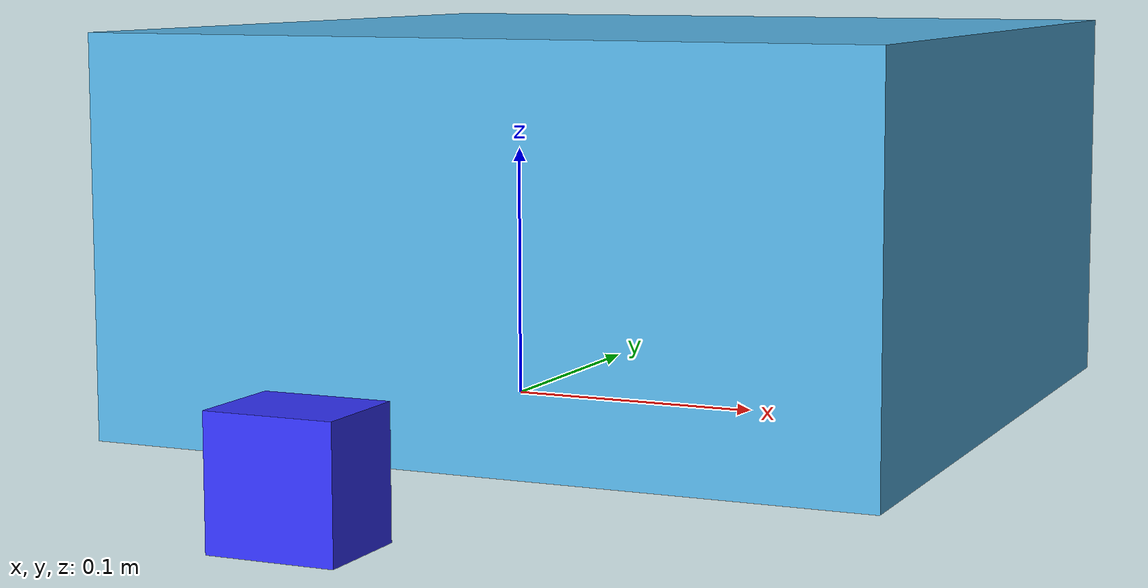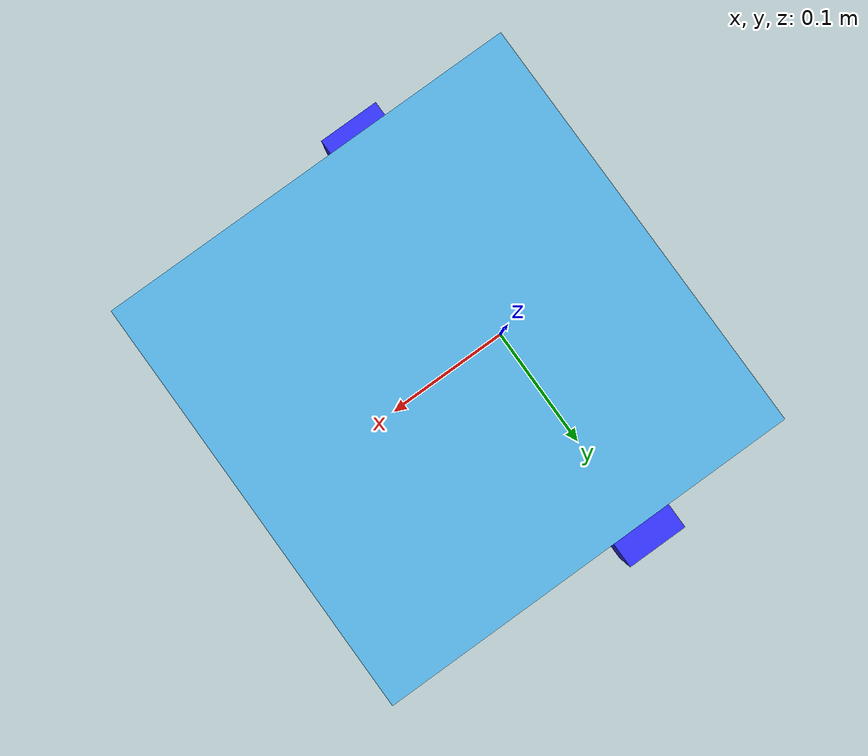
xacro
<?xml version="1.0"?>
<robot xmlns:xacro="http://www.ros.org/wiki/xacro" >

    <xacro:include filename="inertial_macros.xacro"/>

    <material name="white">
        <color rgba="1 1 1 1" />
    </material>

    <material name="orange">
        <color rgba="1 0.3 0.1 1"/>
    </material>

    <material name="blue">
        <color rgba="0.2 0.2 1 1"/>
    </material>

    <material name="black">
        <color rgba="0 0 0 1"/>
    </material>

    <!-- BASE LINK -->

    <link name="base_link">

    </link>

    <!-- chasss LINK -->

    <joint name="chassis_joint" type="fixed">
        <parent link="base_link"/>
        <child link="chassis"/>
        <origin xyz="-0.1 0 0"/>
    </joint>

    <link name="chassis">
        <visual>
            <origin xyz="0.15 0 0.075"/>
            <geometry>
                <box size="0.3 0.3 0.15"/>
            </geometry>
            <meterial name= "white"/>
        </visual>
        <collision>
            <origin xyz="0.15 0 0.075"/>
            <geometry>
                <box size="0.3 0.3 0.15"/>
            </geometry>
        </collision>
        <xacro:inertial_box mass="0.5" x="0.3" y="0.3" z="0.15">
            <origin xyz="0.15 0 0.075}" rpy="0 0 0"/>
        </xacro:inertial_box>

    </link>

    <!-- LEFT WHEEL LINK -->

    <joint name="left_wheel_joint" type="continuous">
        <parent link="base_link"/>
        <child link="left_wheel"/>
        <origin xyz="0 0.175 0" rpy="-${pi/2} 0 0" />
        <axis xyz="0 0 1"/>
    </joint>

    <link name="left_wheel">
        <visual>
            <geometry>
                <box size="0.05 0.05 0.04"/>
            </geometry>
            <material name="blue"/>
        </visual>
        <collision>
            <geometry>
                <box size="0.05 0.05 0.04"/>
            </geometry>
        </collision>
        <xacro:inertial_box mass="0.5" x="0.3" y="0.3" z="0.15">
            <origin xyz="0.15 0 0.075}" rpy="0 0 0"/>
        </xacro:inertial_box>
    </link>

    <!-- RIGHT WHEEL LINK -->

    <joint name="right_wheel_joint" type="continuous">
        <parent link="base_link"/>
        <child link="right_wheel"/>
        <origin xyz="0 -0.175 0" rpy="${pi/2} 0 0" />
        <axis xyz="0 0 -1"/>
    </joint>

    <link name="right_wheel">
        <visual>
            <geometry>
                <box size="0.05 0.05 0.04"/>
            </geometry>
            <material name="blue"/>
        </visual>
        <collision>
            <geometry>
                <box size="0.05 0.05 0.04"/>
            </geometry>
        </collision>
        <xacro:inertial_box mass="0.5" x="0.3" y="0.3" z="0.15">
            <origin xyz="0.15 0 0.075}" rpy="0 0 0"/>
        </xacro:inertial_box>

    </link>

        <!-- CASTER WHEEL LINK -->

    <joint name="caster_wheel_joint" type="fixed">
        <parent link="chassis"/>
        <child link="caster_wheel"/>
        <origin xyz="0.24 0 0"/>
    </joint>

    <link name="caster_wheel">
        <visual>
            <geometry>
                <box size="0.05 0.05 0.04"/>
            </geometry>
            <material name="black"/>
        </visual>
        <collision>
            <geometry>
                <box size="0.05 0.05 0.04"/>
            </geometry>
            <material name="black"/>
        </collision>

    </link>

</robot>

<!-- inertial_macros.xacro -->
<robot xmlns:xacro="http://www.ros.org/wiki/xacro">

    <!-- Specify some standard inertial calculations https://en.wikipedia.org/wiki/List_of_moments_of_inertia -->
    <!-- These make use of xacro's mathematical functionality -->

    <xacro:macro name="inertial_box" params="mass x y z *origin">
        <inertial>
            <xacro:insert_block name="origin"/>
            <mass value="${mass}" />
            <inertia ixx="${(1/12) * mass * (y*y+z*z)}" ixy="0.0" ixz="0.0"
                     iyy="${(1/12) * mass * (x*x+z*z)}" iyz="0.0"
                     izz="${(1/12) * mass * (x*x+y*y)}" />
        </inertial>
    </xacro:macro>

</robot>
